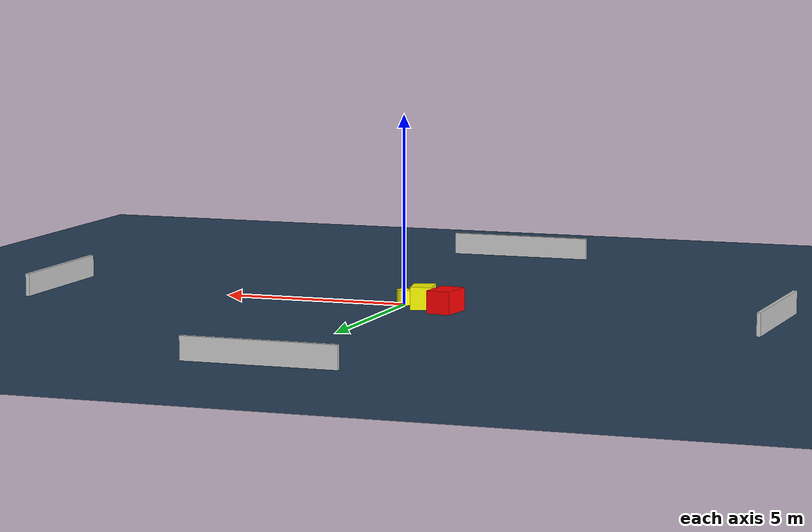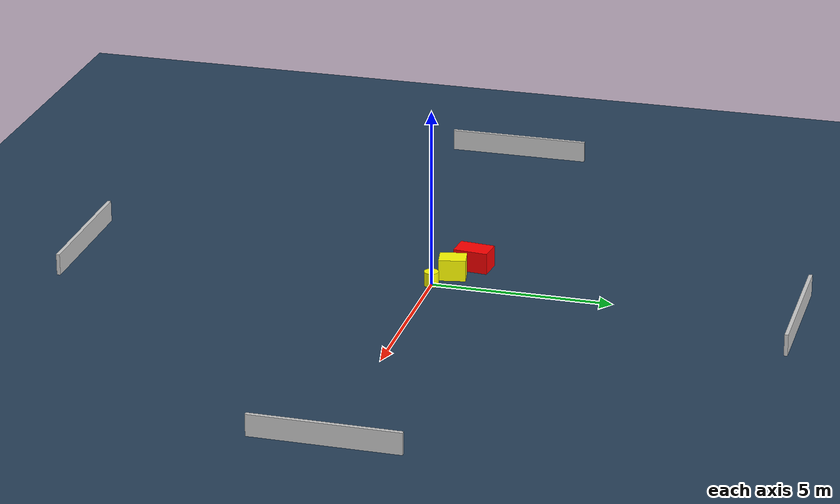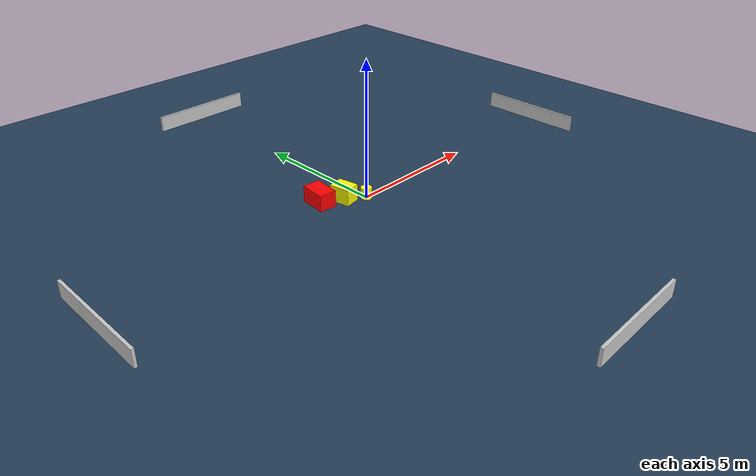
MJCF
<?xml version="1.0" ?>
<mujoco model="generated_environment">
  <option timestep="0.01" integrator="RK4" cone="elliptic"/>
  <default>
    <geom density="1"/>
  </default>
  <asset>
    <texture builtin="gradient" height="3072" name="skybox" rgb1="0.3 0.5 0.7" rgb2="0 0 0" type="skybox" width="512"/>
    <texture builtin="checker" height="300" name="groundplane" rgb1="0.2 0.3 0.4" rgb2="0.1 0.2 0.3" type="2d" width="300"/>
    <material name="groundplane" reflectance="0.2" texrepeat="5 5" texture="groundplane"/>
  </asset>
  <worldbody>
    <light dir="0 0 -1" directional="true" pos="0 0 1.5"/>
    <geom condim="3" friction="0.5 0.005 0.001" material="groundplane" name="floor" pos="0 0 0" size="0 0 0.05" type="plane"/>
    <body name="walls">
      <geom name="wall_1" condim="4" pos="-10.0 0.0 0.3" rgba="0.800000011920929 0.800000011920929 0.800000011920929 1.0" size="0.05 2.0 0.3" type="box"/>
      <geom name="wall_2" condim="4" pos="10.0 0.0 0.3" rgba="0.800000011920929 0.800000011920929 0.800000011920929 1.0" size="0.05 2.0 0.3" type="box"/>
      <geom name="wall_3" condim="4" pos="0.0 -10.0 0.3" rgba="0.800000011920929 0.800000011920929 0.800000011920929 1.0" size="2.0 0.05 0.3" type="box"/>
      <geom name="wall_4" condim="4" pos="0.0 10.0 0.3" rgba="0.800000011920929 0.800000011920929 0.800000011920929 1.0" size="2.0 0.05 0.3" type="box"/>
    </body>
    <body name="robot">
      <joint name="joint_x" type="slide" pos="0 0 0" axis="1 0 0"/>
      <joint name="joint_y" type="slide" pos="0 0 0" axis="0 1 0"/>
      <geom name="robot" type="cylinder" pos="0.0 0.0 0.2" size="0.2 0.2 0.0" mass="5.0" friction="1.0 0.005 0.0001" condim="4" rgba="1.0 1.0 0.0 1.0"/>
    </body>
    <body name="obstacle_1_movable">
      <geom name="obstacle_1_movable" condim="4" pos="-0.6732590323009049 0.42007140805558824 0.3" euler="0 0 190.35203388281687" friction="0.0 0.005 0.001" rgba="1.0 1.0 0.0 1.0" size="0.28612968773663305 0.3711898493631772 0.3" type="box" mass="0.1"/>
      <joint type="free"/>
    </body>
    <body name="obstacle_2_static">
      <geom name="obstacle_2_static" condim="4" pos="-1.4338927248441509 0.8185716764557714 0.3" euler="0 0 84.24029049835825" friction="0.0 0.005 0.001" rgba="1.0 0.0 0.0 1.0" size="0.4841476415639752 0.32004337892785845 0.3" type="box"/>
    </body>
  </worldbody>
  <actuator>
    <motor name="actuator_x" joint="joint_x" gear="1" ctrlrange="-1 1"/>
    <motor name="actuator_y" joint="joint_y" gear="1" ctrlrange="-1 1"/>
  </actuator>
</mujoco>
